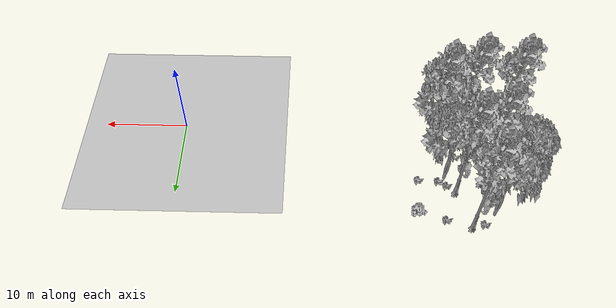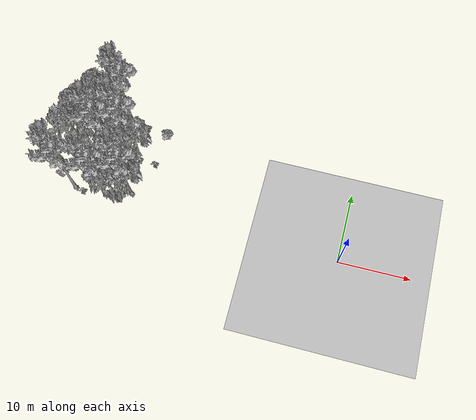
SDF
<sdf version="1.7">
 <world name="default">
  <model name="ground_plane">
   <static>1</static>
   <link name="link">
    <collision name="collision">
     <pose>-50 0 0 0 -0 0</pose>
     <geometry><plane><normal>0 0 1</normal><size>80 80</size></plane></geometry>
     <surface><contact><ode><min_depth>0.01</min_depth><max_vel>0</max_vel></ode></contact></surface>
    </collision>
    <visual name="grass">
     <cast_shadows>0</cast_shadows>
     <geometry>
      <mesh>
       <scale>0.46714285714285714 0.46714285714285714 0.1</scale>
       <uri>file://grass_plane/meshes/grass_plane.dae</uri>
      </mesh>
     </geometry>
    </visual>
   </link>
  </model>
  <model name="Tree 27">
   <static>1</static>
   <pose>-35.699510355819 7.896706620639236 0 1.57079 -0 0</pose>
   <link name="link">
    <collision name="collision">
     <geometry><mesh><scale>3.5 5 3.5</scale><uri>model://tree_9/meshes/tree_9.obj</uri></mesh></geometry>
    </collision>
    <visual name="visual">
     <geometry><mesh><scale>3.5 5 3.5</scale><uri>model://tree_9/meshes/tree_9.obj</uri></mesh></geometry>
    </visual>
   </link>
  </model>
  <model name="Tree 105">
   <static>1</static>
   <pose>-30.32727828493583 2.59412520250541 0 1.57079 -0 0</pose>
   <link name="link">
    <collision name="collision">
     <geometry><mesh><scale>3.5 5 3.5</scale><uri>model://tree_9/meshes/tree_9.obj</uri></mesh></geometry>
    </collision>
    <visual name="visual">
     <geometry><mesh><scale>3.5 5 3.5</scale><uri>model://tree_9/meshes/tree_9.obj</uri></mesh></geometry>
    </visual>
   </link>
  </model>
  <model name="Tree 134">
   <static>1</static>
   <pose>-31.191257998651896 1.8854179651586023 0 1.57079 -0 0</pose>
   <link name="link">
    <collision name="collision">
     <geometry><mesh><scale>3.5 5 3.5</scale><uri>model://tree_2/meshes/tree_2.obj</uri></mesh></geometry>
    </collision>
    <visual name="visual">
     <geometry><mesh><scale>3.5 5 3.5</scale><uri>model://tree_2/meshes/tree_2.obj</uri></mesh></geometry>
    </visual>
   </link>
  </model>
  <model name="Tree 253">
   <static>1</static>
   <pose>-32.62400037252025 9.268735748290382 0 1.57079 -0 0</pose>
   <link name="link">
    <collision name="collision">
     <geometry><mesh><scale>3.5 5 3.5</scale><uri>model://tree_9/meshes/tree_9.obj</uri></mesh></geometry>
    </collision>
    <visual name="visual">
     <geometry><mesh><scale>3.5 5 3.5</scale><uri>model://tree_9/meshes/tree_9.obj</uri></mesh></geometry>
    </visual>
   </link>
  </model>
  <model name="Tree 281">
   <static>1</static>
   <pose>-38.3236694890452 1.551002450915881 0 1.57079 -0 0</pose>
   <link name="link">
    <collision name="collision">
     <geometry><mesh><scale>3.5 5 3.5</scale><uri>model://tree_9/meshes/tree_9.obj</uri></mesh></geometry>
    </collision>
    <visual name="visual">
     <geometry><mesh><scale>3.5 5 3.5</scale><uri>model://tree_9/meshes/tree_9.obj</uri></mesh></geometry>
    </visual>
   </link>
  </model>
  <model name="Tree 404">
   <static>1</static>
   <pose>-34.001118959836745 13.957357505418969 0 1.57079 -0 0</pose>
   <link name="link">
    <collision name="collision">
     <geometry><mesh><scale>3.5 5 3.5</scale><uri>model://tree_9/meshes/tree_9.obj</uri></mesh></geometry>
    </collision>
    <visual name="visual">
     <geometry><mesh><scale>3.5 5 3.5</scale><uri>model://tree_9/meshes/tree_9.obj</uri></mesh></geometry>
    </visual>
   </link>
  </model>
  <model name="Tree 444">
   <static>1</static>
   <pose>-33.86217343089491 1.4788838844482513 0 1.57079 -0 0</pose>
   <link name="link">
    <collision name="collision">
     <geometry><mesh><scale>3.5 5 3.5</scale><uri>model://tree_9/meshes/tree_9.obj</uri></mesh></geometry>
    </collision>
    <visual name="visual">
     <geometry><mesh><scale>3.5 5 3.5</scale><uri>model://tree_9/meshes/tree_9.obj</uri></mesh></geometry>
    </visual>
   </link>
  </model>
  <model name="Tree 482">
   <static>1</static>
   <pose>-31.60644423738763 7.2255571817342314 0 1.57079 -0 0</pose>
   <link name="link">
    <collision name="collision">
     <geometry><mesh><scale>3.5 5 3.5</scale><uri>model://tree_2/meshes/tree_2.obj</uri></mesh></geometry>
    </collision>
    <visual name="visual">
     <geometry><mesh><scale>3.5 5 3.5</scale><uri>model://tree_2/meshes/tree_2.obj</uri></mesh></geometry>
    </visual>
   </link>
  </model>
  <model name="Tree 498">
   <static>1</static>
   <pose>-38.697116386534226 8.637115721243106 0 1.57079 -0 0</pose>
   <link name="link">
    <collision name="collision">
     <geometry><mesh><scale>3.5 5 3.5</scale><uri>model://tree_2/meshes/tree_2.obj</uri></mesh></geometry>
    </collision>
    <visual name="visual">
     <geometry><mesh><scale>3.5 5 3.5</scale><uri>model://tree_2/meshes/tree_2.obj</uri></mesh></geometry>
    </visual>
   </link>
  </model>
  <model name="Tree 589">
   <static>1</static>
   <pose>-36.81620156830835 12.151961471219266 0 1.57079 -0 0</pose>
   <link name="link">
    <collision name="collision">
     <geometry><mesh><scale>3.5 5 3.5</scale><uri>model://tree_2/meshes/tree_2.obj</uri></mesh></geometry>
    </collision>
    <visual name="visual">
     <geometry><mesh><scale>3.5 5 3.5</scale><uri>model://tree_2/meshes/tree_2.obj</uri></mesh></geometry>
    </visual>
   </link>
  </model>
  <model name="Bush 14">
   <static>1</static>
   <pose>-30.821246649415205 7.796600261120396 0 1.57079 -0 0</pose>
   <link name="link">
    <collision name="collision">
     <geometry><mesh><scale>2 2 2</scale><uri>model://bush_2/meshes/bush_2.obj</uri></mesh></geometry>
     <surface><contact><collide_without_contact>false</collide_without_contact></contact></surface>
    </collision>
    <visual name="visual">
     <geometry><mesh><scale>2 2 2</scale><uri>model://bush_2/meshes/bush_2.obj</uri></mesh></geometry>
    </visual>
   </link>
  </model>
  <model name="Bush 22">
   <static>1</static>
   <pose>-33.841204596593705 5.8155573810735035 0 1.57079 -0 0</pose>
   <link name="link">
    <collision name="collision">
     <geometry><mesh><scale>2 2 2</scale><uri>model://bush_2/meshes/bush_2.obj</uri></mesh></geometry>
     <surface><contact><collide_without_contact>false</collide_without_contact></contact></surface>
    </collision>
    <visual name="visual">
     <geometry><mesh><scale>2 2 2</scale><uri>model://bush_2/meshes/bush_2.obj</uri></mesh></geometry>
    </visual>
   </link>
  </model>
  <model name="Bush 49">
   <static>1</static>
   <pose>-37.059445201848206 1.204518467579902 0 1.57079 -0 0</pose>
   <link name="link">
    <collision name="collision">
     <geometry><mesh><scale>2 2 2</scale><uri>model://bush_2/meshes/bush_2.obj</uri></mesh></geometry>
     <surface><contact><collide_without_contact>false</collide_without_contact></contact></surface>
    </collision>
    <visual name="visual">
     <geometry><mesh><scale>2 2 2</scale><uri>model://bush_2/meshes/bush_2.obj</uri></mesh></geometry>
    </visual>
   </link>
  </model>
  <model name="Bush 68">
   <static>1</static>
   <pose>-35.71884105068745 10.996592804101653 0 1.57079 -0 0</pose>
   <link name="link">
    <collision name="collision">
     <geometry><mesh><scale>2 2 2</scale><uri>model://bush_0/meshes/bush_0.obj</uri></mesh></geometry>
     <surface><contact><collide_without_contact>false</collide_without_contact></contact></surface>
    </collision>
    <visual name="visual">
     <geometry><mesh><scale>2 2 2</scale><uri>model://bush_0/meshes/bush_0.obj</uri></mesh></geometry>
    </visual>
   </link>
  </model>
  <model name="Bush 163">
   <static>1</static>
   <pose>-35.484790185268785 13.565817552826367 0 1.57079 -0 0</pose>
   <link name="link">
    <collision name="collision">
     <geometry><mesh><scale>2 2 2</scale><uri>model://bush_2/meshes/bush_2.obj</uri></mesh></geometry>
     <surface><contact><collide_without_contact>false</collide_without_contact></contact></surface>
    </collision>
    <visual name="visual">
     <geometry><mesh><scale>2 2 2</scale><uri>model://bush_2/meshes/bush_2.obj</uri></mesh></geometry>
    </visual>
   </link>
  </model>
  <model name="Bush 171">
   <static>1</static>
   <pose>-37.53642745250278 9.174549807705617 0 1.57079 -0 0</pose>
   <link name="link">
    <collision name="collision">
     <geometry><mesh><scale>2 2 2</scale><uri>model://bush_2/meshes/bush_2.obj</uri></mesh></geometry>
     <surface><contact><collide_without_contact>false</collide_without_contact></contact></surface>
    </collision>
    <visual name="visual">
     <geometry><mesh><scale>2 2 2</scale><uri>model://bush_2/meshes/bush_2.obj</uri></mesh></geometry>
    </visual>
   </link>
  </model>
  <model name="Bush 175">
   <static>1</static>
   <pose>-28.459404363946426 7.683438451532027 0 1.57079 -0 0</pose>
   <link name="link">
    <collision name="collision">
     <geometry><mesh><scale>2 2 2</scale><uri>model://bush_2/meshes/bush_2.obj</uri></mesh></geometry>
     <surface><contact><collide_without_contact>false</collide_without_contact></contact></surface>
    </collision>
    <visual name="visual">
     <geometry><mesh><scale>2 2 2</scale><uri>model://bush_2/meshes/bush_2.obj</uri></mesh></geometry>
    </visual>
   </link>
  </model>
  <model name="Bush 273">
   <static>1</static>
   <pose>-27.95923984518435 12.238788539067222 0 1.57079 -0 0</pose>
   <link name="link">
    <collision name="collision">
     <geometry><mesh><scale>2 2 2</scale><uri>model://bush_1/meshes/bush_1.obj</uri></mesh></geometry>
     <surface><contact><collide_without_contact>false</collide_without_contact></contact></surface>
    </collision>
    <visual name="visual">
     <geometry><mesh><scale>2 2 2</scale><uri>model://bush_1/meshes/bush_1.obj</uri></mesh></geometry>
    </visual>
   </link>
  </model>
  <model name="Bush 285">
   <static>1</static>
   <pose>-31.738510362644945 8.401592469682974 0 1.57079 -0 0</pose>
   <link name="link">
    <collision name="collision">
     <geometry><mesh><scale>2 2 2</scale><uri>model://bush_2/meshes/bush_2.obj</uri></mesh></geometry>
     <surface><contact><collide_without_contact>false</collide_without_contact></contact></surface>
    </collision>
    <visual name="visual">
     <geometry><mesh><scale>2 2 2</scale><uri>model://bush_2/meshes/bush_2.obj</uri></mesh></geometry>
    </visual>
   </link>
  </model>
  <model name="Bush 321">
   <static>1</static>
   <pose>-36.12144249944775 11.29307901766203 0 1.57079 -0 0</pose>
   <link name="link">
    <collision name="collision">
     <geometry><mesh><scale>2 2 2</scale><uri>model://bush_0/meshes/bush_0.obj</uri></mesh></geometry>
     <surface><contact><collide_without_contact>false</collide_without_contact></contact></surface>
    </collision>
    <visual name="visual">
     <geometry><mesh><scale>2 2 2</scale><uri>model://bush_0/meshes/bush_0.obj</uri></mesh></geometry>
    </visual>
   </link>
  </model>
  <model name="Bush 481">
   <static>1</static>
   <pose>-33.199802857857414 4.214905096565275 0 1.57079 -0 0</pose>
   <link name="link">
    <collision name="collision">
     <geometry><mesh><scale>2 2 2</scale><uri>model://bush_2/meshes/bush_2.obj</uri></mesh></geometry>
     <surface><contact><collide_without_contact>false</collide_without_contact></contact></surface>
    </collision>
    <visual name="visual">
     <geometry><mesh><scale>2 2 2</scale><uri>model://bush_2/meshes/bush_2.obj</uri></mesh></geometry>
    </visual>
   </link>
  </model>
  <model name="Bush 496">
   <static>1</static>
   <pose>-31.238840989461856 13.090209225342086 0 1.57079 -0 0</pose>
   <link name="link">
    <collision name="collision">
     <geometry><mesh><scale>2 2 2</scale><uri>model://bush_2/meshes/bush_2.obj</uri></mesh></geometry>
     <surface><contact><collide_without_contact>false</collide_without_contact></contact></surface>
    </collision>
    <visual name="visual">
     <geometry><mesh><scale>2 2 2</scale><uri>model://bush_2/meshes/bush_2.obj</uri></mesh></geometry>
    </visual>
   </link>
  </model>
  <model name="Bush 626">
   <static>1</static>
   <pose>-36.34124208116067 5.427743745928417 0 1.57079 -0 0</pose>
   <link name="link">
    <collision name="collision">
     <geometry><mesh><scale>2 2 2</scale><uri>model://bush_5/meshes/bush_5.obj</uri></mesh></geometry>
     <surface><contact><collide_without_contact>false</collide_without_contact></contact></surface>
    </collision>
    <visual name="visual">
     <geometry><mesh><scale>2 2 2</scale><uri>model://bush_5/meshes/bush_5.obj</uri></mesh></geometry>
    </visual>
   </link>
  </model>
 </world>
</sdf>
